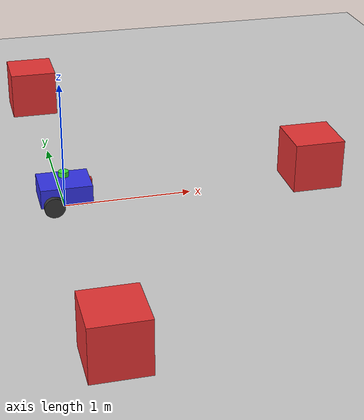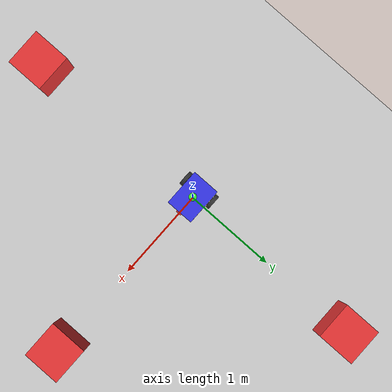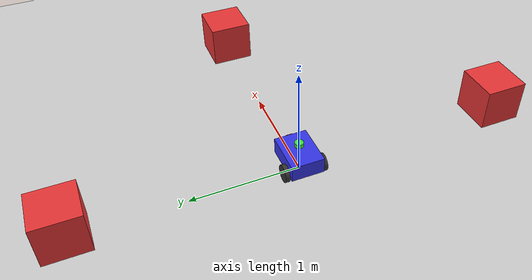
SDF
<?xml version="1.0" ?>
<sdf version="1.9">
  <world name="robot_world">

    <!--        Physics             -->
    <physics name="2_5ms" type="ignored">
      <max_step_size>0.0025</max_step_size>
      <real_time_factor>1.0</real_time_factor>
      <real_time_update_rate>400</real_time_update_rate>
    </physics>

    <!--        Plugins             -->

    <!-- Physics plugin -->
    <plugin filename="gz-sim-physics-system" name="gz::sim::systems::Physics"/>

    <!-- User commands (spawn/delete models via GUI) -->
    <plugin filename="gz-sim-user-commands-system" name="gz::sim::systems::UserCommands"/>

    <!-- Scene broadcaster (renders the scene) -->
    <plugin filename="gz-sim-scene-broadcaster-system" name="gz::sim::systems::SceneBroadcaster"/>

    <!-- Sensors plugin (camera, lidar, etc.) -->
    <plugin filename="gz-sim-sensors-system" name="gz::sim::systems::Sensors">
      <render_engine>ogre2</render_engine>
    </plugin>

    <!-- Contact plugin -->
    <plugin filename="gz-sim-contact-system" name="gz::sim::systems::Contact"/>

    <!--        Lighting            -->
    <light type="directional" name="sun">
      <cast_shadows>true</cast_shadows>
      <pose>0 0 10 0 0 0</pose>
      <diffuse>0.8 0.8 0.8 1</diffuse>
      <specular>0.2 0.2 0.2 1</specular>
      <attenuation>
        <range>1000</range>
        <constant>0.9</constant>
        <linear>0.01</linear>
        <quadratic>0.001</quadratic>
      </attenuation>
      <direction>-0.5 0.1 -0.9</direction>
    </light>

    <!--      Ground Plane          -->
    <model name="ground_plane">
      <static>true</static>
      <link name="link">
        <collision name="collision">
          <geometry>
            <plane>
              <normal>0 0 1</normal>
              <size>100 100</size>
            </plane>
          </geometry>
        </collision>
        <visual name="visual">
          <geometry>
            <plane>
              <normal>0 0 1</normal>
              <size>100 100</size>
            </plane>
          </geometry>
          <material>
            <ambient>0.8 0.8 0.8 1</ambient>
            <diffuse>0.8 0.8 0.8 1</diffuse>
            <specular>0.8 0.8 0.8 1</specular>
          </material>
        </visual>
      </link>
    </model>

    <model name="lidar_obstacle_box1">
      <static>true</static>
      <pose>2 0 0.2 0 0 0</pose> <!-- x y z roll pitch yaw -->
      <link name="link">
        <collision name="collision">
          <geometry>
            <box>
              <size>0.4 0.4 0.4</size>
            </box>
          </geometry>
        </collision>
        <visual name="visual">
          <geometry>
            <box>
              <size>0.4 0.4 0.4</size>
            </box>
          </geometry>
          <material>
            <ambient>0.9 0.2 0.2 1</ambient>
            <diffuse>0.9 0.2 0.2 1</diffuse>
          </material>
        </visual>
      </link>
    </model>

    <model name="lidar_obstacle_box3">
      <static>true</static>
      <pose>0 2 0.2 0 0 0</pose> <!-- x y z roll pitch yaw -->
      <link name="link">
        <collision name="collision">
          <geometry>
            <box>
              <size>0.4 0.4 0.4</size>
            </box>
          </geometry>
        </collision>
        <visual name="visual">
          <geometry>
            <box>
              <size>0.4 0.4 0.4</size>
            </box>
          </geometry>
          <material>
            <ambient>0.9 0.2 0.2 1</ambient>
            <diffuse>0.9 0.2 0.2 1</diffuse>
          </material>
        </visual>
      </link>
    </model>

    <model name="lidar_obstacle_box2">
      <static>true</static>
      <pose>0 -2 0.2 0 0 0</pose> <!-- x y z roll pitch yaw -->
      <link name="link">
        <collision name="collision">
          <geometry>
            <box>
              <size>0.4 0.4 0.4</size>
            </box>
          </geometry>
        </collision>
        <visual name="visual">
          <geometry>
            <box>
              <size>0.4 0.4 0.4</size>
            </box>
          </geometry>
          <material>
            <ambient>0.9 0.2 0.2 1</ambient>
            <diffuse>0.9 0.2 0.2 1</diffuse>
          </material>
        </visual>
      </link>
    </model>

    <!--   Two-Wheeled Robot        -->
    <model name="two_wheel_robot">
      <pose>0 0 0.1 0 0 0</pose>

      <!-- ===== Chassis (body) ===== -->
      <link name="chassis">
        <pose>0 0 0.05 0 0 0</pose>
        <inertial>
          <mass>5.0</mass>
          <inertia>
            <ixx>0.0417</ixx>
            <iyy>0.0667</iyy>
            <izz>0.0917</izz>
            <ixy>0</ixy>
            <ixz>0</ixz>
            <iyz>0</iyz>
          </inertia>
        </inertial>
        <collision name="chassis_collision">
          <geometry>
            <box>
              <size>0.4 0.3 0.15</size>
            </box>
          </geometry>
        </collision>
        <visual name="chassis_visual">
          <geometry>
            <box>
              <size>0.4 0.3 0.15</size>
            </box>
          </geometry>
          <material>
            <ambient>0.1 0.1 0.8 1</ambient>
            <diffuse>0.2 0.2 0.9 1</diffuse>
            <specular>0.5 0.5 0.5 1</specular>
          </material>
        </visual>
      </link>

      <!-- ===== Caster Wheel (front support) ===== -->
      <link name="caster_wheel">
        <pose>0.15 0 -0.05 0 0 0</pose>
        <inertial>
          <mass>0.2</mass>
          <inertia>
            <ixx>0.00008</ixx>
            <iyy>0.00008</iyy>
            <izz>0.00008</izz>
            <ixy>0</ixy>
            <ixz>0</ixz>
            <iyz>0</iyz>
          </inertia>
        </inertial>
        <collision name="caster_collision">
          <geometry>
            <sphere>
              <radius>0.04</radius>
            </sphere>
          </geometry>
          <surface>
            <friction>
              <ode>
                <mu>0.0</mu>
                <mu2>0.0</mu2>
              </ode>
            </friction>
          </surface>
        </collision>
        <visual name="caster_visual">
          <geometry>
            <sphere>
              <radius>0.04</radius>
            </sphere>
          </geometry>
          <material>
            <ambient>0.3 0.3 0.3 1</ambient>
            <diffuse>0.4 0.4 0.4 1</diffuse>
          </material>
        </visual>
      </link>

      <joint name="caster_joint" type="fixed">
        <parent>chassis</parent>
        <child>caster_wheel</child>
      </joint>

      <!-- ===== Left Wheel ===== -->
      <link name="left_wheel">
        <pose>-0.1 0.175 -0.01 -1.5708 0 0</pose>
        <inertial>
          <mass>0.5</mass>
          <inertia>
            <ixx>0.00065</ixx>
            <iyy>0.00065</iyy>
            <izz>0.00113</izz>
            <ixy>0</ixy>
            <ixz>0</ixz>
            <iyz>0</iyz>
          </inertia>
        </inertial>
        <collision name="left_wheel_collision">
          <geometry>
            <cylinder>
              <radius>0.08</radius>
              <length>0.04</length>
            </cylinder>
          </geometry>
          <surface>
            <friction>
              <ode>
                <mu>1.0</mu>
                <mu2>1.0</mu2>
              </ode>
            </friction>
          </surface>
        </collision>
        <visual name="left_wheel_visual">
          <geometry>
            <cylinder>
              <radius>0.08</radius>
              <length>0.04</length>
            </cylinder>
          </geometry>
          <material>
            <ambient>0.1 0.1 0.1 1</ambient>
            <diffuse>0.2 0.2 0.2 1</diffuse>
          </material>
        </visual>
      </link>

      <joint name="left_wheel_joint" type="revolute">
        <parent>chassis</parent>
        <child>left_wheel</child>
        <axis>
          <xyz>0 0 1</xyz>
          <limit>
            <lower>-1.79769e+308</lower>
            <upper>1.79769e+308</upper>
          </limit>
        </axis>
      </joint>

      <!-- ===== Right Wheel ===== -->
      <link name="right_wheel">
        <pose>-0.1 -0.175 -0.01 -1.5708 0 0</pose>
        <inertial>
          <mass>0.5</mass>
          <inertia>
            <ixx>0.00065</ixx>
            <iyy>0.00065</iyy>
            <izz>0.00113</izz>
            <ixy>0</ixy>
            <ixz>0</ixz>
            <iyz>0</iyz>
          </inertia>
        </inertial>
        <collision name="right_wheel_collision">
          <geometry>
            <cylinder>
              <radius>0.08</radius>
              <length>0.04</length>
            </cylinder>
          </geometry>
          <surface>
            <friction>
              <ode>
                <mu>1.0</mu>
                <mu2>1.0</mu2>
              </ode>
            </friction>
          </surface>
        </collision>
        <visual name="right_wheel_visual">
          <geometry>
            <cylinder>
              <radius>0.08</radius>
              <length>0.04</length>
            </cylinder>
          </geometry>
          <material>
            <ambient>0.1 0.1 0.1 1</ambient>
            <diffuse>0.2 0.2 0.2 1</diffuse>
          </material>
        </visual>
      </link>

      <joint name="right_wheel_joint" type="revolute">
        <parent>chassis</parent>
        <child>right_wheel</child>
        <axis>
          <xyz>0 0 1</xyz>
          <limit>
            <lower>-1.79769e+308</lower>
            <upper>1.79769e+308</upper>
          </limit>
        </axis>
      </joint>

      <!-- ===== Camera Link ===== -->
      <link name="camera_link">
        <pose>0.2 0 0.1 0 0 0</pose>
        <inertial>
          <mass>0.1</mass>
          <inertia>
            <ixx>0.00001</ixx>
            <iyy>0.00001</iyy>
            <izz>0.00001</izz>
            <ixy>0</ixy>
            <ixz>0</ixz>
            <iyz>0</iyz>
          </inertia>
        </inertial>
        <visual name="camera_visual">
          <geometry>
            <box>
              <size>0.03 0.06 0.03</size>
            </box>
          </geometry>
          <material>
            <ambient>0.8 0.1 0.1 1</ambient>
            <diffuse>0.9 0.2 0.2 1</diffuse>
          </material>
        </visual>
        <sensor name="camera" type="camera">
          <always_on>true</always_on>
          <update_rate>30</update_rate>
          <visualize>true</visualize>
          <topic>camera</topic>
          <frame_id>camera_link</frame_id>
          <camera>
            <horizontal_fov>1.3962634</horizontal_fov>
            <image>
              <width>640</width>
              <height>480</height>
              <format>R8G8B8</format>
            </image>
            <clip>
              <near>0.02</near>
              <far>300</far>
            </clip>
          </camera>
        </sensor>
      </link>

      <joint name="camera_joint" type="fixed">
        <parent>chassis</parent>
        <child>camera_link</child>
      </joint>

      <!-- ===== Lidar Link ===== -->
      <link name="lidar_link">
        <pose>0 0 0.18 0 0 0</pose>
        <inertial>
          <mass>0.2</mass>
          <inertia>
            <ixx>0.00005</ixx>
            <iyy>0.00005</iyy>
            <izz>0.00005</izz>
            <ixy>0</ixy>
            <ixz>0</ixz>
            <iyz>0</iyz>
          </inertia>
        </inertial>
        <visual name="lidar_visual">
          <geometry>
            <cylinder>
              <radius>0.04</radius>
              <length>0.04</length>
            </cylinder>
          </geometry>
          <material>
            <ambient>0.1 0.8 0.1 1</ambient>
            <diffuse>0.2 0.9 0.2 1</diffuse>
          </material>
        </visual>
        <sensor name="lidar" type="gpu_lidar">
          <always_on>true</always_on>
          <update_rate>10</update_rate>
          <visualize>true</visualize>
          <topic>lidar</topic>
          <frame_id>lidar_link</frame_id>
          <lidar>
            <scan>
              <horizontal>
                <samples>360</samples>
                <resolution>1</resolution>
                <min_angle>-3.14159</min_angle>
                <max_angle>3.14159</max_angle>
              </horizontal>
              <vertical>
                <samples>1</samples>
                <resolution>1</resolution>
                <min_angle>0</min_angle>
                <max_angle>0</max_angle>
              </vertical>
            </scan>
            <range>
              <min>0.08</min>
              <max>10.0</max>
              <resolution>0.01</resolution>
            </range>
            <noise>
              <type>gaussian</type>
              <mean>0</mean>
              <stddev>0.01</stddev>
            </noise>
          </lidar>
        </sensor>
      </link>

      <joint name="lidar_joint" type="fixed">
        <parent>chassis</parent>
        <child>lidar_link</child>
      </joint>

      <!-- ===== Differential Drive Plugin ===== -->
      <plugin filename="gz-sim-diff-drive-system" name="gz::sim::systems::DiffDrive">
        <left_joint>left_wheel_joint</left_joint>
        <right_joint>right_wheel_joint</right_joint>
        <wheel_separation>0.35</wheel_separation>
        <wheel_radius>0.08</wheel_radius>
        <odom_publish_frequency>50</odom_publish_frequency>
        <topic>cmd_vel</topic>
        <odom_topic>odom</odom_topic>
        <tf_topic>tf</tf_topic>
        <frame_id>odom</frame_id>
        <child_frame_id>base_link</child_frame_id>
        <max_linear_acceleration>1.0</max_linear_acceleration>
        <min_linear_acceleration>-1.0</min_linear_acceleration>
        <max_angular_acceleration>2.0</max_angular_acceleration>
        <min_angular_acceleration>-2.0</min_angular_acceleration>
      </plugin>

      <!-- Joint State Publisher -->
      <plugin filename="gz-sim-joint-state-publisher-system" name="gz::sim::systems::JointStatePublisher"/>

    </model>

    <!--  Keyboard → cmd_vel  (TriggeredPublisher)    -->
    <!--  Key codes: W=87 S=83 A=65 D=68              -->
    <!--  Arrow keys: Up=16777235 Down=16777237        -->
    <!--              Left=16777234 Right=16777236      -->

    <!-- W key / Up arrow → Forward -->
    <plugin filename="gz-sim-triggered-publisher-system" name="gz::sim::systems::TriggeredPublisher">
      <input type="gz.msgs.Int32" topic="/keyboard/keypress">
        <match field="data">87</match>
      </input>
      <output type="gz.msgs.Twist" topic="/cmd_vel">
        linear: {x: 0.5}, angular: {z: 0.0}
      </output>
    </plugin>
    <plugin filename="gz-sim-triggered-publisher-system" name="gz::sim::systems::TriggeredPublisher">
      <input type="gz.msgs.Int32" topic="/keyboard/keypress">
        <match field="data">16777235</match>
      </input>
      <output type="gz.msgs.Twist" topic="/cmd_vel">
        linear: {x: 0.5}, angular: {z: 0.0}
      </output>
    </plugin>

    <!-- S key / Down arrow → Backward -->
    <plugin filename="gz-sim-triggered-publisher-system" name="gz::sim::systems::TriggeredPublisher">
      <input type="gz.msgs.Int32" topic="/keyboard/keypress">
        <match field="data">83</match>
      </input>
      <output type="gz.msgs.Twist" topic="/cmd_vel">
        linear: {x: -0.5}, angular: {z: 0.0}
      </output>
    </plugin>
    <plugin filename="gz-sim-triggered-publisher-system" name="gz::sim::systems::TriggeredPublisher">
      <input type="gz.msgs.Int32" topic="/keyboard/keypress">
        <match field="data">16777237</match>
      </input>
      <output type="gz.msgs.Twist" topic="/cmd_vel">
        linear: {x: -0.5}, angular: {z: 0.0}
      </output>
    </plugin>

    <!-- A key / Left arrow → Turn Left -->
    <plugin filename="gz-sim-triggered-publisher-system" name="gz::sim::systems::TriggeredPublisher">
      <input type="gz.msgs.Int32" topic="/keyboard/keypress">
        <match field="data">65</match>
      </input>
      <output type="gz.msgs.Twist" topic="/cmd_vel">
        linear: {x: 0.0}, angular: {z: 0.5}
      </output>
    </plugin>
    <plugin filename="gz-sim-triggered-publisher-system" name="gz::sim::systems::TriggeredPublisher">
      <input type="gz.msgs.Int32" topic="/keyboard/keypress">
        <match field="data">16777234</match>
      </input>
      <output type="gz.msgs.Twist" topic="/cmd_vel">
        linear: {x: 0.0}, angular: {z: 0.5}
      </output>
    </plugin>

    <!-- D key / Right arrow → Turn Right -->
    <plugin filename="gz-sim-triggered-publisher-system" name="gz::sim::systems::TriggeredPublisher">
      <input type="gz.msgs.Int32" topic="/keyboard/keypress">
        <match field="data">68</match>
      </input>
      <output type="gz.msgs.Twist" topic="/cmd_vel">
        linear: {x: 0.0}, angular: {z: -0.5}
      </output>
    </plugin>
    <plugin filename="gz-sim-triggered-publisher-system" name="gz::sim::systems::TriggeredPublisher">
      <input type="gz.msgs.Int32" topic="/keyboard/keypress">
        <match field="data">16777236</match>
      </input>
      <output type="gz.msgs.Twist" topic="/cmd_vel">
        linear: {x: 0.0}, angular: {z: -0.5}
      </output>
    </plugin>

    <!--     GUI Configuration      -->
    <gui fullscreen="0">

      <!-- 3D Scene -->
      <plugin filename="MinimalScene" name="3D View">
        <gz-gui>
          <title>3D View</title>
          <property type="bool" key="showTitleBar">false</property>
          <property type="string" key="state">docked</property>
        </gz-gui>
        <engine>ogre2</engine>
        <scene>scene</scene>
        <ambient_light>0.4 0.4 0.4</ambient_light>
        <background_color>0.8 0.8 0.8</background_color>
        <camera_pose>-3 0 2 0 0.5 0</camera_pose>
        <camera_clip>
          <near>0.25</near>
          <far>25000</far>
        </camera_clip>
      </plugin>

      <!-- Provides mouse and keyboard interaction -->
      <plugin filename="GzSceneManager" name="Scene Manager">
        <gz-gui>
          <property type="bool" key="showTitleBar">false</property>
          <property type="string" key="state">docked</property>
        </gz-gui>
      </plugin>

      <plugin filename="InteractiveViewControl" name="Interactive View Control">
        <gz-gui>
          <property type="bool" key="showTitleBar">false</property>
          <property type="string" key="state">docked</property>
        </gz-gui>
      </plugin>

      <!-- World control (play/pause/step) -->
      <plugin filename="WorldControl" name="World control">
        <gz-gui>
          <title>World control</title>
          <property type="bool" key="showTitleBar">false</property>
          <property type="bool" key="resizable">false</property>
          <property type="double" key="height">72</property>
          <property type="double" key="width">121</property>
          <property type="double" key="z">1</property>
          <property type="string" key="state">floating</property>
          <anchors target="3D View">
            <line own="left" target="left"/>
            <line own="bottom" target="bottom"/>
          </anchors>
        </gz-gui>
        <play_pause>true</play_pause>
        <step>true</step>
      </plugin>

      <!-- World stats (sim time, real time) -->
      <plugin filename="WorldStats" name="World stats">
        <gz-gui>
          <title>World stats</title>
          <property type="bool" key="showTitleBar">false</property>
          <property type="bool" key="resizable">false</property>
          <property type="double" key="height">110</property>
          <property type="double" key="width">290</property>
          <property type="double" key="z">1</property>
          <property type="string" key="state">floating</property>
          <anchors target="3D View">
            <line own="right" target="right"/>
            <line own="bottom" target="bottom"/>
          </anchors>
        </gz-gui>
        <sim_time>true</sim_time>
        <real_time>true</real_time>
        <real_time_factor>true</real_time_factor>
        <iterations>true</iterations>
      </plugin>

      <!-- Entity tree -->
      <plugin filename="EntityTree" name="Entity tree"/>

      <!-- KeyPublisher: captures keyboard input and publishes to /keyboard/keypress -->
      <plugin filename="KeyPublisher" name="Key Publisher"/>

    </gui>

  </world>
</sdf>
